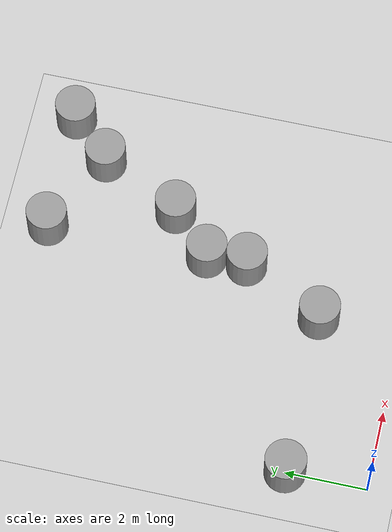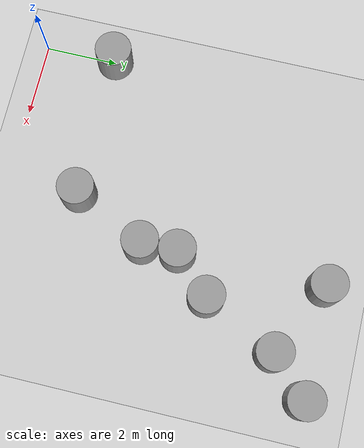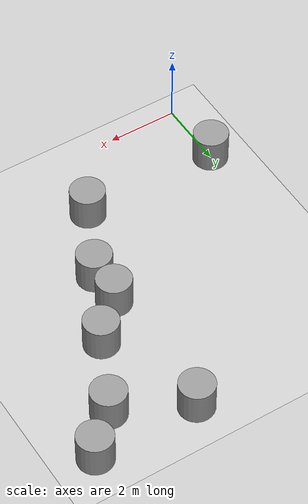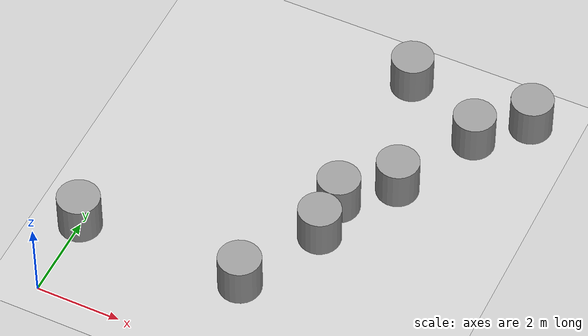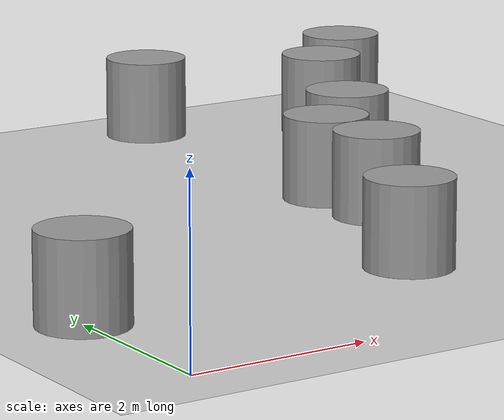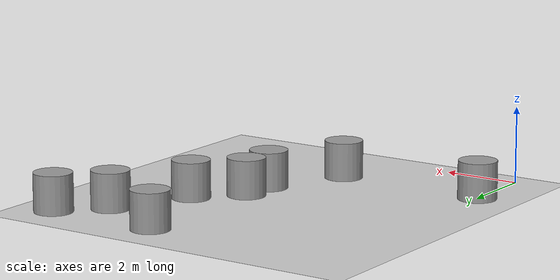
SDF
<sdf version="1.6">
 <world name="default">
  <light name="sun" type="directional">
   <pose>0 0 10 0 -0 0</pose>
   <diffuse>0.8 0.8 0.8 1</diffuse>
   <specular>0.2 0.2 0.2 1</specular>
   <attenuation>
    <range>1000</range>
    <constant>0.9</constant>
    <linear>0.01</linear>
    <quadratic>0.001</quadratic>
   </attenuation>
   <direction>-0.5 0.1 -0.9</direction>
  </light>
  <model name="ground_plane">
   <pose>8 9 0 0 -0 0</pose>
   <static>1</static>
   <link name="link">
    <collision name="collision">
     <geometry><plane><normal>0 0 1</normal><size>100 100</size></plane></geometry>
     <surface><friction><ode><mu>100</mu><mu2>50</mu2></ode></friction></surface>
    </collision>
    <visual name="visual">
     <cast_shadows>0</cast_shadows>
     <geometry><plane><normal>0 0 1</normal><size>100 100</size></plane></geometry>
     <material>
      <script><uri>file://media/materials/scripts/gazebo.material</uri><name>Gazebo/Grey</name></script>
     </material>
    </visual>
   </link>
  </model>
  <gravity>0 0 -9.8</gravity>
  <magnetic_field>6e-06 2.3e-05 -4.2e-05</magnetic_field>
  <atmosphere type="adiabatic"/>
  <physics name="default_physics" default="0" type="ode">
   <max_step_size>0.001</max_step_size>
   <real_time_factor>1</real_time_factor>
   <real_time_update_rate>1000</real_time_update_rate>
  </physics>
  <scene><ambient>0.4 0.4 0.4 1</ambient><background>0.7 0.7 0.7 1</background><shadows>1</shadows></scene>
  <spherical_coordinates>
   <surface_model>EARTH_WGS84</surface_model>
   <latitude_deg>0</latitude_deg>
   <longitude_deg>0</longitude_deg>
   <elevation>0</elevation>
   <heading_deg>0</heading_deg>
  </spherical_coordinates>
  <model name="unit_cylinder">
   <pose>-3e-06 2 0.499993 -3e-06 -1e-06 -0</pose>
   <link name="link">
    <inertial>
     <mass>1</mass>
     <inertia><ixx>0.145833</ixx><ixy>0</ixy><ixz>0</ixz><iyy>0.145833</iyy><iyz>0</iyz><izz>0.125</izz></inertia>
    </inertial>
    <collision name="collision">
     <geometry><cylinder><radius>0.5</radius><length>1</length></cylinder></geometry>
    </collision>
    <visual name="visual">
     <geometry><cylinder><radius>0.5</radius><length>1</length></cylinder></geometry>
     <material>
      <script><name>Gazebo/Grey</name><uri>file://media/materials/scripts/gazebo.material</uri></script>
     </material>
    </visual>
   </link>
  </model>
  <model name="unit_cylinder_0">
   <pose>4 2 0.499994 -3e-06 -1e-06 -0</pose>
   <link name="link">
    <inertial>
     <mass>1</mass>
     <inertia><ixx>0.145833</ixx><ixy>0</ixy><ixz>0</ixz><iyy>0.145833</iyy><iyz>0</iyz><izz>0.125</izz></inertia>
    </inertial>
    <collision name="collision">
     <geometry><cylinder><radius>0.5</radius><length>1</length></cylinder></geometry>
    </collision>
    <visual name="visual">
     <geometry><cylinder><radius>0.5</radius><length>1</length></cylinder></geometry>
     <material>
      <script><name>Gazebo/Grey</name><uri>file://media/materials/scripts/gazebo.material</uri></script>
     </material>
    </visual>
   </link>
  </model>
  <model name="unit_cylinder_1">
   <pose>5 4.00001 0.499997 0 -3e-06 0.022915</pose>
   <link name="link">
    <inertial>
     <mass>1</mass>
     <inertia><ixx>0.145833</ixx><ixy>0</ixy><ixz>0</ixz><iyy>0.145833</iyy><iyz>0</iyz><izz>0.125</izz></inertia>
    </inertial>
    <collision name="collision">
     <geometry><cylinder><radius>0.5</radius><length>1</length></cylinder></geometry>
    </collision>
    <visual name="visual">
     <geometry><cylinder><radius>0.5</radius><length>1</length></cylinder></geometry>
     <material>
      <script><name>Gazebo/Grey</name><uri>file://media/materials/scripts/gazebo.material</uri></script>
     </material>
    </visual>
   </link>
  </model>
  <model name="unit_cylinder_2">
   <pose>6 6 0.499998 3e-06 -2e-06 -0.048805</pose>
   <link name="link">
    <inertial>
     <mass>1</mass>
     <inertia><ixx>0.145833</ixx><ixy>0</ixy><ixz>0</ixz><iyy>0.145833</iyy><iyz>0</iyz><izz>0.125</izz></inertia>
    </inertial>
    <collision name="collision">
     <geometry><cylinder><radius>0.5</radius><length>1</length></cylinder></geometry>
    </collision>
    <visual name="visual">
     <geometry><cylinder><radius>0.5</radius><length>1</length></cylinder></geometry>
     <material>
      <script><name>Gazebo/Grey</name><uri>file://media/materials/scripts/gazebo.material</uri></script>
     </material>
    </visual>
   </link>
  </model>
  <model name="unit_cylinder_3">
   <pose>5 9 0.499998 3e-06 -3e-06 0.043623</pose>
   <link name="link">
    <inertial>
     <mass>1</mass>
     <inertia><ixx>0.145833</ixx><ixy>0</ixy><ixz>0</ixz><iyy>0.145833</iyy><iyz>0</iyz><izz>0.125</izz></inertia>
    </inertial>
    <collision name="collision">
     <geometry><cylinder><radius>0.5</radius><length>1</length></cylinder></geometry>
    </collision>
    <visual name="visual">
     <geometry><cylinder><radius>0.5</radius><length>1</length></cylinder></geometry>
     <material>
      <script><name>Gazebo/Grey</name><uri>file://media/materials/scripts/gazebo.material</uri></script>
     </material>
    </visual>
   </link>
  </model>
  <model name="unit_cylinder_4">
   <pose>5 5.00001 0.499996 5e-06 2e-06 6e-06</pose>
   <link name="link">
    <inertial>
     <mass>1</mass>
     <inertia><ixx>0.145833</ixx><ixy>0</ixy><ixz>0</ixz><iyy>0.145833</iyy><iyz>0</iyz><izz>0.125</izz></inertia>
    </inertial>
    <collision name="collision">
     <geometry><cylinder><radius>0.5</radius><length>1</length></cylinder></geometry>
    </collision>
    <visual name="visual">
     <geometry><cylinder><radius>0.5</radius><length>1</length></cylinder></geometry>
     <material>
      <script><name>Gazebo/Grey</name><uri>file://media/materials/scripts/gazebo.material</uri></script>
     </material>
    </visual>
   </link>
  </model>
  <model name="unit_cylinder_5">
   <pose>8 9 0.499997 4e-06 4e-06 -0</pose>
   <link name="link">
    <inertial>
     <mass>1</mass>
     <inertia><ixx>0.145833</ixx><ixy>0</ixy><ixz>0</ixz><iyy>0.145833</iyy><iyz>0</iyz><izz>0.125</izz></inertia>
    </inertial>
    <collision name="collision">
     <geometry><cylinder><radius>0.5</radius><length>1</length></cylinder></geometry>
    </collision>
    <visual name="visual">
     <geometry><cylinder><radius>0.5</radius><length>1</length></cylinder></geometry>
     <material>
      <script><name>Gazebo/Grey</name><uri>file://media/materials/scripts/gazebo.material</uri></script>
     </material>
    </visual>
   </link>
  </model>
  <model name="unit_cylinder_6">
   <pose>7 8 0.499993 -4e-06 -4e-06 -0</pose>
   <link name="link">
    <inertial>
     <mass>1</mass>
     <inertia><ixx>0.145833</ixx><ixy>0</ixy><ixz>0</ixz><iyy>0.145833</iyy><iyz>0</iyz><izz>0.125</izz></inertia>
    </inertial>
    <collision name="collision">
     <geometry><cylinder><radius>0.5</radius><length>1</length></cylinder></geometry>
    </collision>
    <visual name="visual">
     <geometry><cylinder><radius>0.5</radius><length>1</length></cylinder></geometry>
     <material>
      <script><name>Gazebo/Grey</name><uri>file://media/materials/scripts/gazebo.material</uri></script>
     </material>
    </visual>
   </link>
  </model>
 </world>
</sdf>
